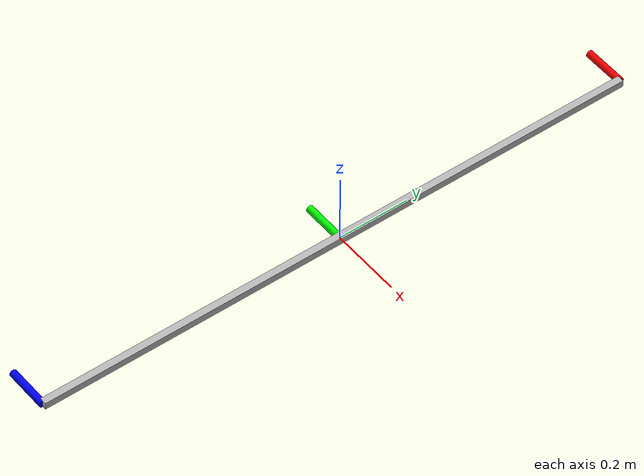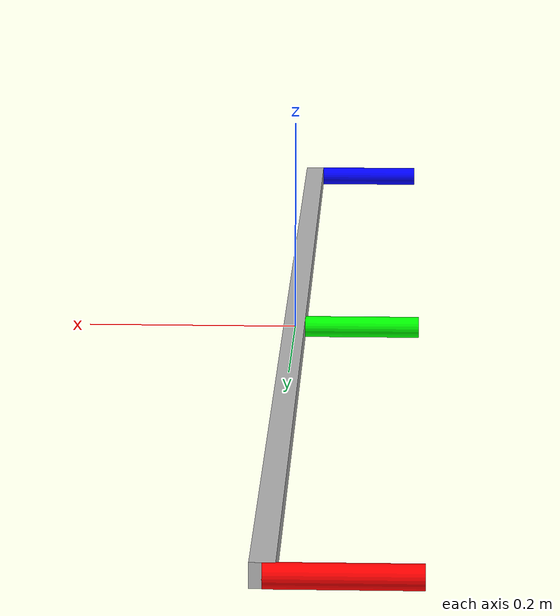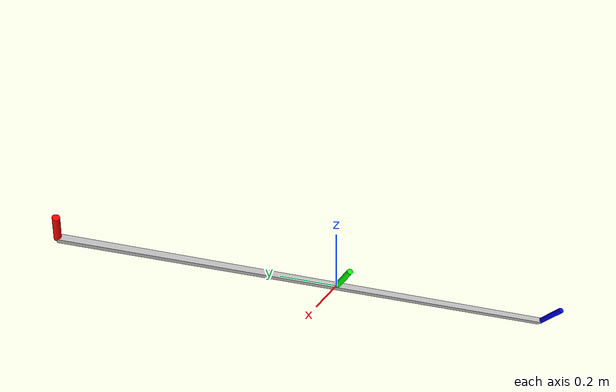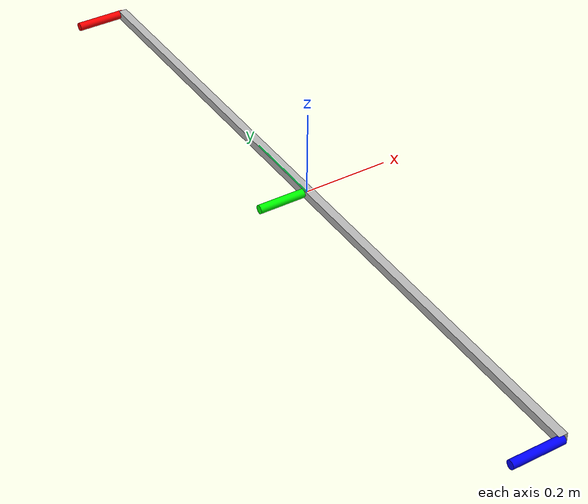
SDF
<?xml version="1.0" ?>
<sdf version="1.12">
    <model name="wall_mount_bracket">
      <static>true</static>
      <link name="link">
        <collision name="collision">
          <pose>0.0 0.0 0 0 0.0 0</pose>
          <geometry>
            <box>
              <size>0.02 1.727 0.02 0 0 0</size>
            </box>
          </geometry>
        </collision>
        <visual name="base_visual">
          <pose>0.0 0.0 0 0 0.0 0</pose>
          <geometry>
            <box>
              <size>0.02 1.727 0.02 0 0 0</size>
            </box>
          </geometry>
        </visual>
        <visual name="pin1_visual">
          <pose>-0.06 0.0 0 0 1.57079 0</pose>
          <geometry>
            <cylinder>
              <radius>0.01</radius>
              <length>0.12</length>
            </cylinder>
          </geometry>
          <material>
            <diffuse>0.0 1.0 0.0</diffuse>
            <pbr>
              <metal>
                <metalness>0.5</metalness>
                <roughness>0.1</roughness>
              </metal>
            </pbr>
          </material>
        </visual>
        <visual name="pin2_visual">
          <pose>-0.06 -0.8635 0 0 1.57079 0</pose>
          <geometry>
            <cylinder>
              <radius>0.01</radius>
              <length>0.12</length>
            </cylinder>
          </geometry>
          <material>
            <diffuse>0.0 0.0 1.0</diffuse>
            <pbr>
              <metal>
                <metalness>0.5</metalness>
                <roughness>0.1</roughness>
              </metal>
            </pbr>
          </material>

        </visual>
        <visual name="pin3_visual">
          <pose>-0.06 0.8635 0 0 1.57079 0</pose>
          <geometry>
            <cylinder>
              <radius>0.01</radius>
              <length>0.12</length>
            </cylinder>
          </geometry>
          <material>
            <diffuse>1.0 0.0 0.0</diffuse>
            <pbr>
              <metal>
                <metalness>0.5</metalness>
                <roughness>0.1</roughness>
              </metal>
            </pbr>
          </material>
        </visual>
      </link>
    </model>
</sdf>
